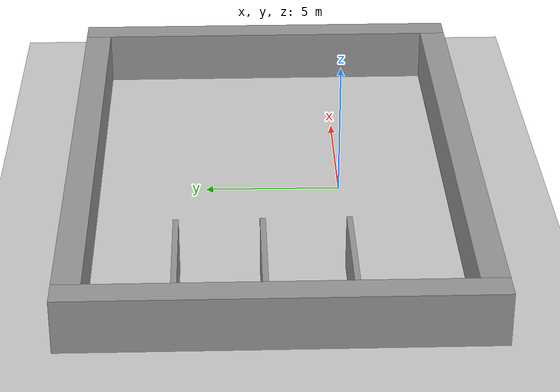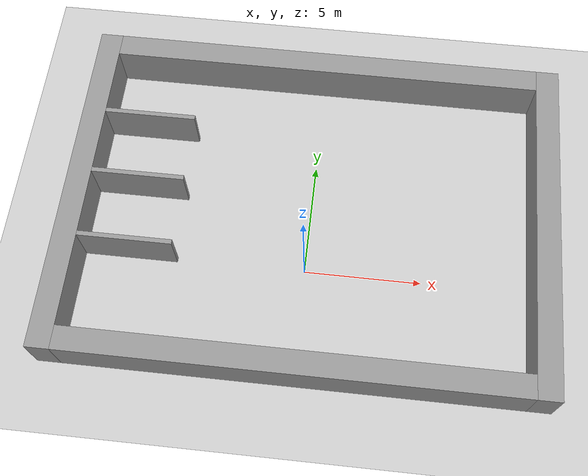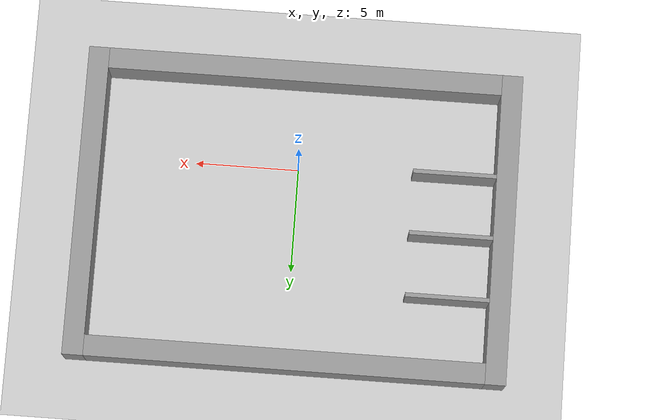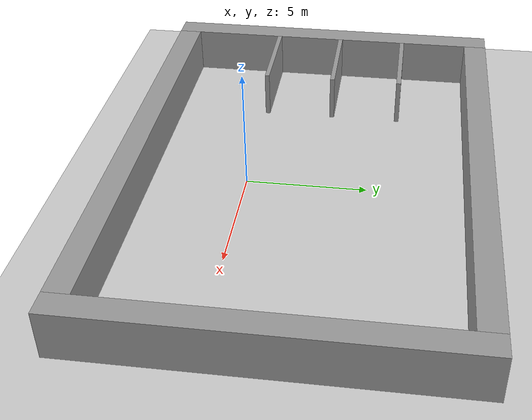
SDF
<sdf version="1.7">
 <world name="default">
  <light name="sun" type="directional">
   <pose>0 0 10 0 -0 0</pose>
   <diffuse>0.8 0.8 0.8 1</diffuse>
   <specular>0.2 0.2 0.2 1</specular>
   <attenuation>
    <range>1000</range>
    <constant>0.9</constant>
    <linear>0.01</linear>
    <quadratic>0.001</quadratic>
   </attenuation>
   <direction>-0.5 0.1 -0.9</direction>
   <spot><inner_angle>0</inner_angle><outer_angle>0</outer_angle><falloff>0</falloff></spot>
  </light>
  <model name="ground_plane">
   <static>1</static>
   <link name="link">
    <collision name="collision">
     <geometry><plane><normal>0 0 1</normal><size>100 100</size></plane></geometry>
     <surface><friction><ode><mu>100</mu><mu2>50</mu2></ode></friction></surface>
    </collision>
    <visual name="visual">
     <cast_shadows>0</cast_shadows>
     <geometry><plane><normal>0 0 1</normal><size>100 100</size></plane></geometry>
     <material>
      <script><uri>file://media/materials/scripts/gazebo.material</uri><name>Gazebo/Grey</name></script>
     </material>
    </visual>
   </link>
  </model>
  <gravity>0 0 -9.8</gravity>
  <magnetic_field>6e-06 2.3e-05 -4.2e-05</magnetic_field>
  <atmosphere type="adiabatic"/>
  <physics type="ode">
   <max_step_size>0.001</max_step_size>
   <real_time_factor>1</real_time_factor>
   <real_time_update_rate>1000</real_time_update_rate>
  </physics>
  <scene><ambient>0.4 0.4 0.4 1</ambient><background>0.7 0.7 0.7 1</background><shadows>1</shadows></scene>
  <spherical_coordinates>
   <surface_model>EARTH_WGS84</surface_model>
   <latitude_deg>0</latitude_deg>
   <longitude_deg>0</longitude_deg>
   <elevation>0</elevation>
   <heading_deg>0</heading_deg>
  </spherical_coordinates>
  <model name="unit_box">
   <pose>-10 2.5 1.0 0 0 0</pose>
   <link name="link">
    <inertial>
     <mass>1</mass>
     <inertia>
      <ixx>0.166667</ixx>
      <ixy>0</ixy>
      <ixz>0</ixz>
      <iyy>0.166667</iyy>
      <iyz>0</iyz>
      <izz>0.166667</izz>
     </inertia>
    </inertial>
    <collision name="collision"><geometry><box><size>1.0 15.0 2.0</size></box></geometry></collision>
    <visual name="visual">
     <geometry><box><size>1.0 15.0 2.0</size></box></geometry>
     <material>
      <script><name>Gazebo/Grey</name><uri>file://media/materials/scripts/gazebo.material</uri></script>
     </material>
    </visual>
   </link>
   <static>1</static>
  </model>
  <model name="unit_box_0">
   <pose>10 2.5 1.0 0 0 0</pose>
   <link name="link">
    <inertial>
     <mass>1</mass>
     <inertia>
      <ixx>0.166667</ixx>
      <ixy>0</ixy>
      <ixz>0</ixz>
      <iyy>0.166667</iyy>
      <iyz>0</iyz>
      <izz>0.166667</izz>
     </inertia>
    </inertial>
    <collision name="collision"><geometry><box><size>1.0 15.0 2.0</size></box></geometry></collision>
    <visual name="visual">
     <geometry><box><size>1.0 15.0 2.0</size></box></geometry>
     <material>
      <script><name>Gazebo/Grey</name><uri>file://media/materials/scripts/gazebo.material</uri></script>
     </material>
    </visual>
   </link>
   <static>1</static>
  </model>
  <model name="unit_box_1">
   <pose>0 -4.5 1.0 0 0 0</pose>
   <link name="link">
    <inertial>
     <mass>1</mass>
     <inertia>
      <ixx>0.166667</ixx>
      <ixy>0</ixy>
      <ixz>0</ixz>
      <iyy>0.166667</iyy>
      <iyz>0</iyz>
      <izz>0.166667</izz>
     </inertia>
    </inertial>
    <collision name="collision"><geometry><box><size>19 1.0 2.0</size></box></geometry></collision>
    <visual name="visual">
     <geometry><box><size>19 1.0 2.0</size></box></geometry>
     <material>
      <script><name>Gazebo/Grey</name><uri>file://media/materials/scripts/gazebo.material</uri></script>
     </material>
    </visual>
   </link>
   <static>1</static>
  </model>
  <model name="unit_box_2">
   <pose>0 9.5 1.0 0 0 0</pose>
   <link name="link">
    <inertial>
     <mass>1</mass>
     <inertia>
      <ixx>0.166667</ixx>
      <ixy>0</ixy>
      <ixz>0</ixz>
      <iyy>0.166667</iyy>
      <iyz>0</iyz>
      <izz>0.166667</izz>
     </inertia>
    </inertial>
    <collision name="collision"><geometry><box><size>19 1.0 2.0</size></box></geometry></collision>
    <visual name="visual">
     <geometry><box><size>19 1.0 2.0</size></box></geometry>
     <material>
      <script><name>Gazebo/Grey</name><uri>file://media/materials/scripts/gazebo.material</uri></script>
     </material>
    </visual>
   </link>
   <static>1</static>
  </model>
  <model name="unit_box_3">
   <pose>-7.5 6 1.0 0 0 0</pose>
   <link name="link">
    <inertial>
     <mass>1</mass>
     <inertia>
      <ixx>0.166667</ixx>
      <ixy>0</ixy>
      <ixz>0</ixz>
      <iyy>0.166667</iyy>
      <iyz>0</iyz>
      <izz>0.166667</izz>
     </inertia>
    </inertial>
    <collision name="collision"><geometry><box><size>4 0.2 2.0</size></box></geometry></collision>
    <visual name="visual">
     <geometry><box><size>4 0.2 2.0</size></box></geometry>
     <material>
      <script><name>Gazebo/Grey</name><uri>file://media/materials/scripts/gazebo.material</uri></script>
     </material>
    </visual>
   </link>
   <static>1</static>
  </model>
  <model name="unit_box_4">
   <pose>-7.5 3 1.0 0 0 0</pose>
   <link name="link">
    <inertial>
     <mass>1</mass>
     <inertia>
      <ixx>0.166667</ixx>
      <ixy>0</ixy>
      <ixz>0</ixz>
      <iyy>0.166667</iyy>
      <iyz>0</iyz>
      <izz>0.166667</izz>
     </inertia>
    </inertial>
    <collision name="collision"><geometry><box><size>4 0.2 2.0</size></box></geometry></collision>
    <visual name="visual">
     <geometry><box><size>4 0.2 2.0</size></box></geometry>
     <material>
      <script><name>Gazebo/Grey</name><uri>file://media/materials/scripts/gazebo.material</uri></script>
     </material>
    </visual>
   </link>
   <static>1</static>
  </model>
  <model name="unit_box_5">
   <pose>-7.5 0 1.0 0 0 0</pose>
   <link name="link">
    <inertial>
     <mass>1</mass>
     <inertia>
      <ixx>0.166667</ixx>
      <ixy>0</ixy>
      <ixz>0</ixz>
      <iyy>0.166667</iyy>
      <iyz>0</iyz>
      <izz>0.166667</izz>
     </inertia>
    </inertial>
    <collision name="collision"><geometry><box><size>4 0.2 2.0</size></box></geometry></collision>
    <visual name="visual">
     <geometry><box><size>4 0.2 2.0</size></box></geometry>
     <material>
      <script><name>Gazebo/Grey</name><uri>file://media/materials/scripts/gazebo.material</uri></script>
     </material>
    </visual>
   </link>
   <static>1</static>
  </model>
 </world>
</sdf>
